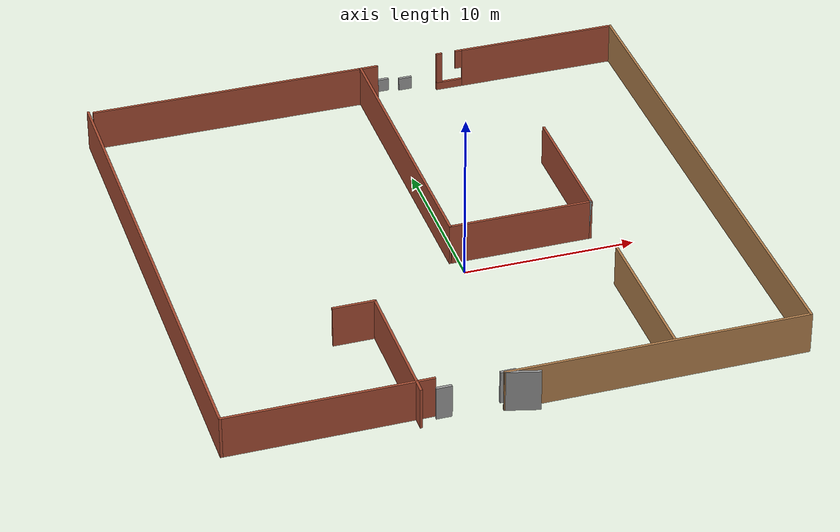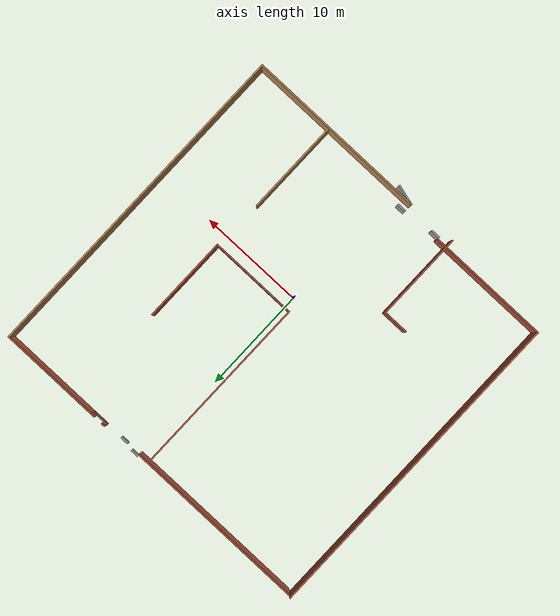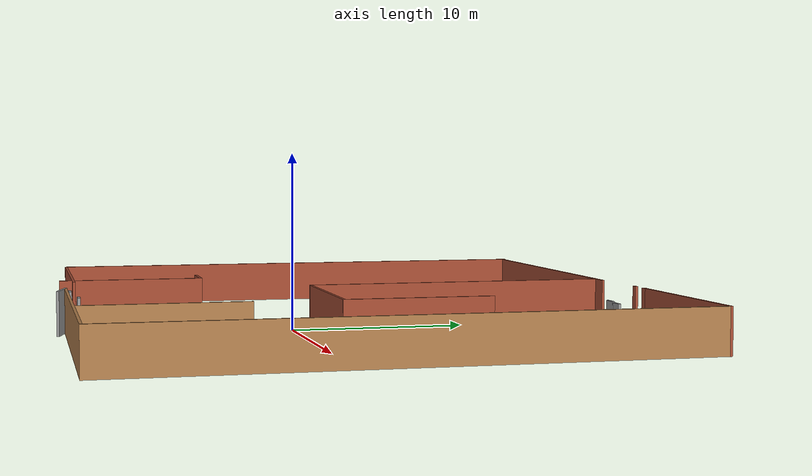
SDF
<?xml version='1.0'?>
<sdf version='1.6'>
  <model name='model'>
    <pose frame=''>-0.853624 2.93914 0 0 -0 0</pose>
    <link name='Door_0'>
      <collision name='Door_0_Collision'>
        <geometry>
          <box>
            <size>0.9 0.17 2</size>
          </box>
        </geometry>
        <pose frame=''>0 0 1 0 -0 0</pose>
      </collision>
      <visual name='Door_0_Visual'>
        <pose frame=''>0 0 1 0 -0 0</pose>
        <geometry>
          <box>
            <size>0.9 0.17 2</size>
          </box>
        </geometry>
        <material>
          <script>
            <uri>file://media/materials/scripts/gazebo.material</uri>
            <name>Gazebo/Grey</name>
          </script>
        </material>
      </visual>
      <pose frame=''>-0.625278 -14.8472 0 0 -0 0</pose>
    </link>
    <link name='Door_1'>
      <collision name='Door_1_Collision'>
        <geometry>
          <box>
            <size>0.9 0.17 2</size>
          </box>
        </geometry>
        <pose frame=''>0 0 1 0 -0 0</pose>
      </collision>
      <visual name='Door_1_Visual'>
        <pose frame=''>0 0 1 0 -0 0</pose>
        <geometry>
          <box>
            <size>0.9 0.17 2</size>
          </box>
        </geometry>
        <material>
          <script>
            <uri>file://media/materials/scripts/gazebo.material</uri>
            <name>Gazebo/Grey</name>
          </script>
        </material>
      </visual>
      <pose frame=''>-4.28411 -15.1701 0 0 -0 0</pose>
    </link>
    <link name='Wall_10'>
      <collision name='Wall_10_Collision'>
        <geometry>
          <box>
            <size>31.75 0.15 2.5</size>
          </box>
        </geometry>
        <pose frame=''>0 0 1.25 0 -0 0</pose>
      </collision>
      <visual name='Wall_10_Visual'>
        <pose frame=''>0 0 1.25 0 -0 0</pose>
        <geometry>
          <box>
            <size>31.75 0.15 2.5</size>
          </box>
        </geometry>
        <material>
          <script>
            <uri>file://media/materials/scripts/gazebo.material</uri>
            <name>Gazebo/Wood</name>
          </script>
          <ambient>1 1 1 1</ambient>
        </material>
        <meta>
          <layer>0</layer>
        </meta>
      </visual>
      <pose frame=''>16.3367 0.247834 0 0 -0 1.5708</pose>
    </link>
    <link name='Wall_11'>
      <pose frame=''>10.7867 16.0478 0 0 -0 3.14159</pose>
      <visual name='Wall_11_Visual_0'>
        <pose frame=''>-0.80391 0 1.25 0 -0 0</pose>
        <geometry>
          <box>
            <size>9.64218 0.15 2.5</size>
          </box>
        </geometry>
        <material>
          <script>
            <uri>file://media/materials/scripts/gazebo.material</uri>
            <name>Gazebo/Bricks</name>
          </script>
          <ambient>1 1 1 1</ambient>
        </material>
        <meta>
          <layer>0</layer>
        </meta>
      </visual>
      <collision name='Wall_11_Collision_0'>
        <geometry>
          <box>
            <size>9.64218 0.15 2.5</size>
          </box>
        </geometry>
        <pose frame=''>-0.80391 0 1.25 0 -0 0</pose>
      </collision>
      <visual name='Wall_11_Visual_1'>
        <pose frame=''>4.82109 0 0.25 0 -0 0</pose>
        <geometry>
          <box>
            <size>1.60782 0.15 0.5</size>
          </box>
        </geometry>
        <material>
          <script>
            <uri>file://media/materials/scripts/gazebo.material</uri>
            <name>Gazebo/Bricks</name>
          </script>
          <ambient>1 1 1 1</ambient>
        </material>
        <meta>
          <layer>0</layer>
        </meta>
      </visual>
      <collision name='Wall_11_Collision_1'>
        <geometry>
          <box>
            <size>1.60782 0.15 0.5</size>
          </box>
        </geometry>
        <pose frame=''>4.82109 0 0.25 0 -0 0</pose>
      </collision>
      <visual name='Wall_11_Visual_2'>
        <pose frame=''>5.43631 0 1.5 0 -0 0</pose>
        <geometry>
          <box>
            <size>0.377369 0.15 2</size>
          </box>
        </geometry>
        <material>
          <script>
            <uri>file://media/materials/scripts/gazebo.material</uri>
            <name>Gazebo/Bricks</name>
          </script>
          <ambient>1 1 1 1</ambient>
        </material>
        <meta>
          <layer>0</layer>
        </meta>
      </visual>
      <collision name='Wall_11_Collision_2'>
        <geometry>
          <box>
            <size>0.377369 0.15 2</size>
          </box>
        </geometry>
        <pose frame=''>5.43631 0 1.5 0 -0 0</pose>
      </collision>
      <visual name='Wall_11_Visual_3'>
        <pose frame=''>4.2324 0 1.9 0 -0 0</pose>
        <geometry>
          <box>
            <size>0.43045 0.15 1.2</size>
          </box>
        </geometry>
        <material>
          <script>
            <uri>file://media/materials/scripts/gazebo.material</uri>
            <name>Gazebo/Bricks</name>
          </script>
          <ambient>1 1 1 1</ambient>
        </material>
        <meta>
          <layer>0</layer>
        </meta>
      </visual>
      <collision name='Wall_11_Collision_3'>
        <geometry>
          <box>
            <size>0.43045 0.15 1.2</size>
          </box>
        </geometry>
        <pose frame=''>4.2324 0 1.9 0 -0 0</pose>
      </collision>
    </link>
    <link name='Wall_13'>
      <collision name='Wall_13_Collision'>
        <geometry>
          <box>
            <size>17.5 0.15 2.5</size>
          </box>
        </geometry>
        <pose frame=''>0 0 1.25 0 -0 0</pose>
      </collision>
      <visual name='Wall_13_Visual'>
        <pose frame=''>0 0 1.25 0 -0 0</pose>
        <geometry>
          <box>
            <size>17.5 0.15 2.5</size>
          </box>
        </geometry>
        <material>
          <script>
            <uri>file://media/materials/scripts/gazebo.material</uri>
            <name>Gazebo/Bricks</name>
          </script>
          <ambient>1 1 1 1</ambient>
        </material>
        <meta>
          <layer>0</layer>
        </meta>
      </visual>
      <pose frame=''>-7.33889 15.8224 0 0 -0 0</pose>
    </link>
    <link name='Wall_15'>
      <collision name='Wall_15_Collision'>
        <geometry>
          <box>
            <size>17.75 0.15 2.5</size>
          </box>
        </geometry>
        <pose frame=''>0 0 1.25 0 -0 0</pose>
      </collision>
      <visual name='Wall_15_Visual'>
        <pose frame=''>0 0 1.25 0 -0 0</pose>
        <geometry>
          <box>
            <size>17.75 0.15 2.5</size>
          </box>
        </geometry>
        <material>
          <script>
            <uri>file://media/materials/scripts/gazebo.material</uri>
            <name>Gazebo/Bricks</name>
          </script>
          <ambient>1 1 1 1</ambient>
        </material>
        <meta>
          <layer>0</layer>
        </meta>
      </visual>
      <pose frame=''>0.343236 7.02236 0 0 0 -1.5708</pose>
    </link>
    <link name='Wall_16'>
      <collision name='Wall_16_Collision'>
        <geometry>
          <box>
            <size>8.5 0.15 2.5</size>
          </box>
        </geometry>
        <pose frame=''>0 0 1.25 0 -0 0</pose>
      </collision>
      <visual name='Wall_16_Visual'>
        <pose frame=''>0 0 1.25 0 -0 0</pose>
        <geometry>
          <box>
            <size>8.5 0.15 2.5</size>
          </box>
        </geometry>
        <material>
          <script>
            <uri>file://media/materials/scripts/gazebo.material</uri>
            <name>Gazebo/Bricks</name>
          </script>
          <ambient>1 1 1 1</ambient>
        </material>
        <meta>
          <layer>0</layer>
        </meta>
      </visual>
      <pose frame=''>4.51824 -1.77764 0 0 -0 0</pose>
    </link>
    <link name='Wall_17'>
      <collision name='Wall_17_Collision'>
        <geometry>
          <box>
            <size>0.15 0.15 2.5</size>
          </box>
        </geometry>
        <pose frame=''>0 0 1.25 0 -0 0</pose>
      </collision>
      <visual name='Wall_17_Visual'>
        <pose frame=''>0 0 1.25 0 -0 0</pose>
        <geometry>
          <box>
            <size>0.15 0.15 2.5</size>
          </box>
        </geometry>
        <material>
          <script>
            <uri>file://media/materials/scripts/gazebo.material</uri>
            <name>Gazebo/Grey</name>
          </script>
          <ambient>1 1 1 1</ambient>
        </material>
        <meta>
          <layer>0</layer>
        </meta>
      </visual>
      <pose frame=''>8.69324 -1.77764 0 0 -0 0</pose>
    </link>
    <link name='Wall_18'>
      <collision name='Wall_18_Collision'>
        <geometry>
          <box>
            <size>8.25 0.15 2.5</size>
          </box>
        </geometry>
        <pose frame=''>0 0 1.25 0 -0 0</pose>
      </collision>
      <visual name='Wall_18_Visual'>
        <pose frame=''>0 0 1.25 0 -0 0</pose>
        <geometry>
          <box>
            <size>8.25 0.15 2.5</size>
          </box>
        </geometry>
        <material>
          <script>
            <uri>file://media/materials/scripts/gazebo.material</uri>
            <name>Gazebo/Bricks</name>
          </script>
          <ambient>1 1 1 1</ambient>
        </material>
        <meta>
          <layer>0</layer>
        </meta>
      </visual>
      <pose frame=''>8.69324 2.27236 0 0 -0 1.5708</pose>
    </link>
    <link name='Wall_20'>
      <collision name='Wall_20_Collision'>
        <geometry>
          <box>
            <size>2.5 0.15 2.5</size>
          </box>
        </geometry>
        <pose frame=''>0 0 1.25 0 -0 0</pose>
      </collision>
      <visual name='Wall_20_Visual'>
        <pose frame=''>0 0 1.25 0 -0 0</pose>
        <geometry>
          <box>
            <size>2.5 0.15 2.5</size>
          </box>
        </geometry>
        <material>
          <script>
            <uri>file://media/materials/scripts/gazebo.material</uri>
            <name>Gazebo/Bricks</name>
          </script>
          <ambient>1 1 1 1</ambient>
        </material>
        <meta>
          <layer>0</layer>
        </meta>
      </visual>
      <pose frame=''>-6.87555 -7.31436 0 0 -0 0</pose>
    </link>
    <link name='Wall_21'>
      <collision name='Wall_21_Collision'>
        <geometry>
          <box>
            <size>8.5 0.15 2.5</size>
          </box>
        </geometry>
        <pose frame=''>0 0 1.25 0 -0 0</pose>
      </collision>
      <visual name='Wall_21_Visual'>
        <pose frame=''>0 0 1.25 0 -0 0</pose>
        <geometry>
          <box>
            <size>8.5 0.15 2.5</size>
          </box>
        </geometry>
        <material>
          <script>
            <uri>file://media/materials/scripts/gazebo.material</uri>
            <name>Gazebo/Bricks</name>
          </script>
          <ambient>1 1 1 1</ambient>
        </material>
        <meta>
          <layer>0</layer>
        </meta>
      </visual>
      <pose frame=''>-5.70055 -11.4894 0 0 0 -1.5708</pose>
    </link>
    <link name='Wall_23'>
      <collision name='Wall_23_Collision'>
        <geometry>
          <box>
            <size>9 0.15 2.5</size>
          </box>
        </geometry>
        <pose frame=''>0 0 1.25 0 -0 0</pose>
      </collision>
      <visual name='Wall_23_Visual'>
        <pose frame=''>0 0 1.25 0 -0 0</pose>
        <geometry>
          <box>
            <size>9 0.15 2.5</size>
          </box>
        </geometry>
        <material>
          <script>
            <uri>file://media/materials/scripts/gazebo.material</uri>
            <name>Gazebo/Wood</name>
          </script>
          <ambient>1 1 1 1</ambient>
        </material>
        <meta>
          <layer>0</layer>
        </meta>
      </visual>
      <pose frame=''>8.5218 -10.9861 0 0 0 -1.5708</pose>
    </link>
    <link name='Wall_3'>
      <collision name='Wall_3_Collision'>
        <geometry>
          <box>
            <size>31 0.15 2.5</size>
          </box>
        </geometry>
        <pose frame=''>0 0 1.25 0 -0 0</pose>
      </collision>
      <visual name='Wall_3_Visual'>
        <pose frame=''>0 0 1.25 0 -0 0</pose>
        <geometry>
          <box>
            <size>31 0.15 2.5</size>
          </box>
        </geometry>
        <material>
          <script>
            <uri>file://media/materials/scripts/gazebo.material</uri>
            <name>Gazebo/Bricks</name>
          </script>
          <ambient>1 1 1 1</ambient>
        </material>
        <meta>
          <layer>0</layer>
        </meta>
      </visual>
      <pose frame=''>-16.3367 0.504973 0 0 0 -1.5708</pose>
    </link>
    <link name='Wall_4'>
      <collision name='Wall_4_Collision'>
        <geometry>
          <box>
            <size>11.75 0.15 2.5</size>
          </box>
        </geometry>
        <pose frame=''>0 0 1.25 0 -0 0</pose>
      </collision>
      <visual name='Wall_4_Visual'>
        <pose frame=''>0 0 1.25 0 -0 0</pose>
        <geometry>
          <box>
            <size>11.75 0.15 2.5</size>
          </box>
        </geometry>
        <material>
          <script>
            <uri>file://media/materials/scripts/gazebo.material</uri>
            <name>Gazebo/Bricks</name>
          </script>
          <ambient>1 1 1 1</ambient>
        </material>
        <meta>
          <layer>0</layer>
        </meta>
      </visual>
      <pose frame=''>-10.5367 -14.92 0 0 -0 0</pose>
    </link>
    <link name='Wall_6'>
      <collision name='Wall_6_Collision'>
        <geometry>
          <box>
            <size>2 0.15 2.5</size>
          </box>
        </geometry>
        <pose frame=''>0 0 1.25 0 -0 0</pose>
      </collision>
      <visual name='Wall_6_Visual'>
        <pose frame=''>0 0 1.25 0 -0 0</pose>
        <geometry>
          <box>
            <size>2 0.15 2.5</size>
          </box>
        </geometry>
        <material>
          <script>
            <uri>file://media/materials/scripts/gazebo.material</uri>
            <name>Gazebo/Grey</name>
          </script>
          <ambient>1 1 1 1</ambient>
        </material>
        <meta>
          <layer>0</layer>
        </meta>
      </visual>
      <pose frame=''>-0.119795 -15.7916 0 0 -0 2.87979</pose>
    </link>
    <link name='Wall_9'>
      <collision name='Wall_9_Collision'>
        <geometry>
          <box>
            <size>17.5 0.15 2.5</size>
          </box>
        </geometry>
        <pose frame=''>0 0 1.25 0 -0 0</pose>
      </collision>
      <visual name='Wall_9_Visual'>
        <pose frame=''>0 0 1.25 0 -0 0</pose>
        <geometry>
          <box>
            <size>17.5 0.15 2.5</size>
          </box>
        </geometry>
        <material>
          <script>
            <uri>file://media/materials/scripts/gazebo.material</uri>
            <name>Gazebo/Wood</name>
          </script>
          <ambient>1 1 1 1</ambient>
        </material>
        <meta>
          <layer>0</layer>
        </meta>
      </visual>
      <pose frame=''>7.66172 -15.5522 0 0 -0 0</pose>
    </link>
    <link name='Window_3'>
      <collision name='Window_3_Collision'>
        <geometry>
          <box>
            <size>0.8 0.17 0.8</size>
          </box>
        </geometry>
        <pose frame=''>0 0 0.4 0 -0 0</pose>
      </collision>
      <visual name='Window_3_Visual'>
        <pose frame=''>0 0 0.4 0 -0 0</pose>
        <geometry>
          <box>
            <size>0.8 0.17 0.8</size>
          </box>
        </geometry>
        <material>
          <script>
            <uri>file://media/materials/scripts/gazebo.material</uri>
            <name>Gazebo/Grey</name>
          </script>
        </material>
      </visual>
      <pose frame=''>1.7422 16.1452 0.5 0 -0 0</pose>
    </link>
    <link name='Window_4'>
      <collision name='Window_4_Collision'>
        <geometry>
          <box>
            <size>0.8 0.17 0.8</size>
          </box>
        </geometry>
        <pose frame=''>0 0 0.4 0 -0 0</pose>
      </collision>
      <visual name='Window_4_Visual'>
        <pose frame=''>0 0 0.4 0 -0 0</pose>
        <geometry>
          <box>
            <size>0.8 0.17 0.8</size>
          </box>
        </geometry>
        <material>
          <script>
            <uri>file://media/materials/scripts/gazebo.material</uri>
            <name>Gazebo/Grey</name>
          </script>
        </material>
      </visual>
      <pose frame=''>3.14116 15.93 0.5 0 -0 0</pose>
    </link>
    <static>1</static>
  </model>
</sdf>
